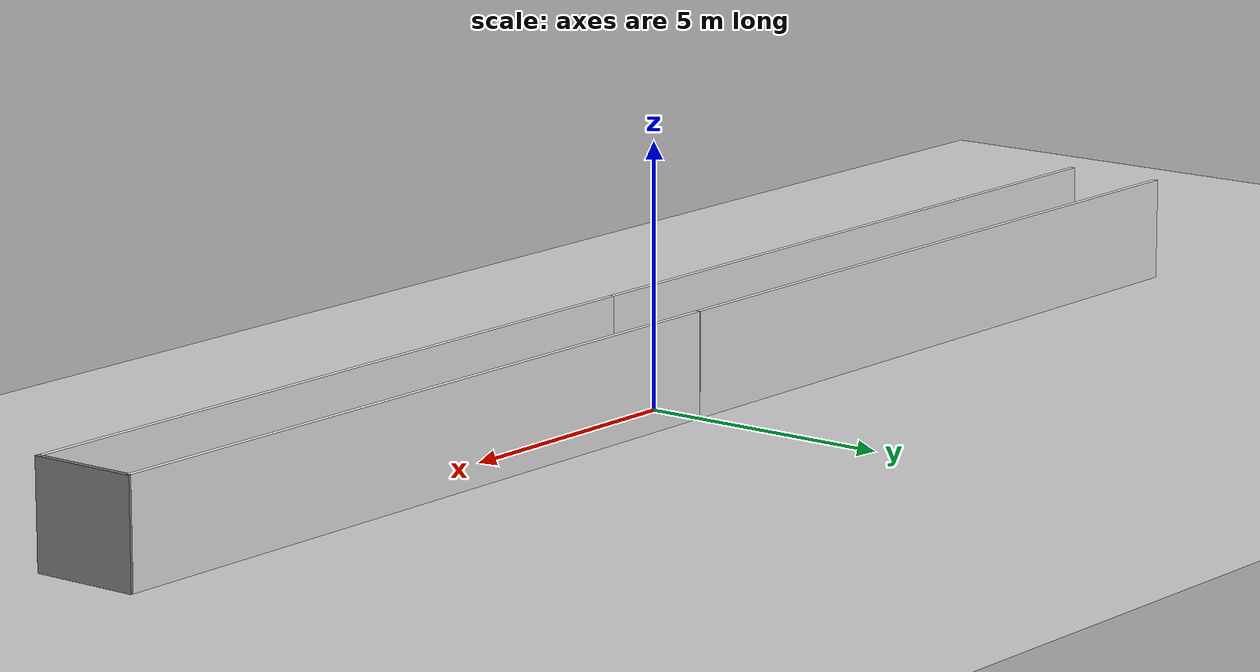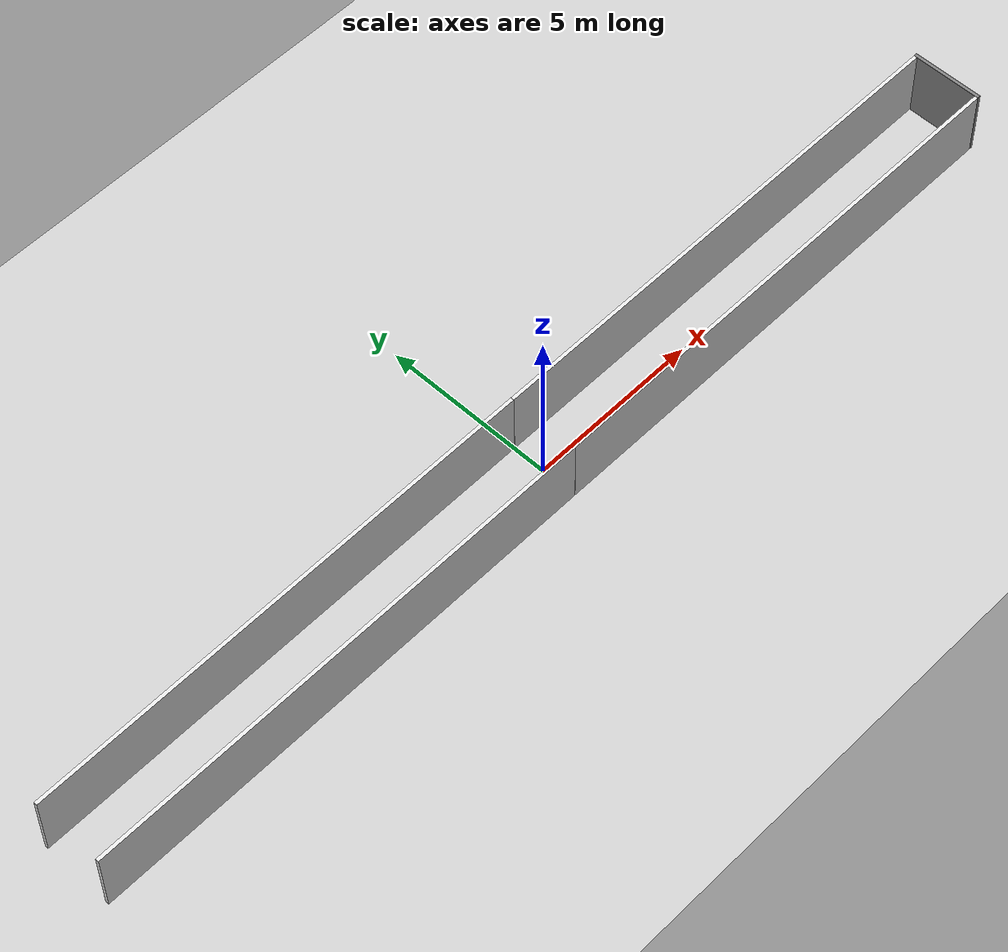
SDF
<sdf version="1.7">
 <world name="hallway">
  <light name="sun" type="directional">
   <pose>0 0 10 0 -0 0</pose>
   <diffuse>0.8 0.8 0.8 1</diffuse>
   <specular>0.2 0.2 0.2 1</specular>
   <direction>-0.5 0.1 -0.9</direction>
   <attenuation><range>10</range></attenuation>
   <spot><inner_angle>0</inner_angle><outer_angle>0</outer_angle><falloff>0</falloff></spot>
  </light>
  <model name="ground_plane">
   <static>1</static>
   <link name="link">
    <collision name="collision">
     <geometry><plane><normal>0 0 1</normal><size>100 100</size></plane></geometry>
    </collision>
    <visual name="visual">
     <geometry><plane><normal>0 0 1</normal><size>100 100</size></plane></geometry>
     <material><ambient>0.8 0.8 0.8 1</ambient><diffuse>0.8 0.8 0.8 1</diffuse></material>
    </visual>
   </link>
  </model>
  <model name="wall_left">
   <static>1</static>
   <pose>7.5 1 1 0 -0 0</pose>
   <link name="link">
    <collision name="collision"><geometry><box><size>15 0.1 2</size></box></geometry></collision>
    <visual name="visual">
     <geometry><box><size>15 0.1 2</size></box></geometry>
     <material><ambient>0.9 0.9 0.9 1</ambient><diffuse>0.9 0.9 0.9 1</diffuse></material>
    </visual>
   </link>
  </model>
  <model name="wall_right">
   <static>1</static>
   <pose>7.5 -1 1 0 -0 0</pose>
   <link name="link">
    <collision name="collision"><geometry><box><size>15 0.1 2</size></box></geometry></collision>
    <visual name="visual">
     <geometry><box><size>15 0.1 2</size></box></geometry>
     <material><ambient>0.9 0.9 0.9 1</ambient><diffuse>0.9 0.9 0.9 1</diffuse></material>
    </visual>
   </link>
  </model>
  <model name="wall_end">
   <static>1</static>
   <pose>15 0 1 0 -0 0</pose>
   <link name="link">
    <collision name="collision"><geometry><box><size>0.1 2.1 2</size></box></geometry></collision>
    <visual name="visual">
     <geometry><box><size>0.1 2.1 2</size></box></geometry>
     <material><ambient>0.5 0.5 0.5 1</ambient><diffuse>0.5 0.5 0.5 1</diffuse></material>
    </visual>
   </link>
  </model>
  <gravity>0 0 -9.8</gravity>
  <magnetic_field>6e-06 2.3e-05 -4.2e-05</magnetic_field>
  <atmosphere type="adiabatic"/>
  <physics type="ode">
   <max_step_size>0.001</max_step_size>
   <real_time_factor>1</real_time_factor>
   <real_time_update_rate>1000</real_time_update_rate>
  </physics>
  <scene><ambient>0.4 0.4 0.4 1</ambient><background>0.7 0.7 0.7 1</background><shadows>1</shadows></scene>
  <audio><device>default</device></audio>
  <spherical_coordinates>
   <surface_model>EARTH_WGS84</surface_model>
   <latitude_deg>0</latitude_deg>
   <longitude_deg>0</longitude_deg>
   <elevation>0</elevation>
   <heading_deg>0</heading_deg>
  </spherical_coordinates>
  <model name="wall_right_clone">
   <static>1</static>
   <pose>-7.5072 -1.00168 1 0 -0 0</pose>
   <link name="link">
    <collision name="collision"><geometry><box><size>15 0.1 2</size></box></geometry></collision>
    <visual name="visual">
     <geometry><box><size>15 0.1 2</size></box></geometry>
     <material><ambient>0.9 0.9 0.9 1</ambient><diffuse>0.9 0.9 0.9 1</diffuse></material>
    </visual>
   </link>
  </model>
  <model name="wall_right_clone_0">
   <static>1</static>
   <pose>-7.50738 1.00273 1 0 -0 0</pose>
   <link name="link">
    <collision name="collision"><geometry><box><size>15 0.1 2</size></box></geometry></collision>
    <visual name="visual">
     <geometry><box><size>15 0.1 2</size></box></geometry>
     <material><ambient>0.9 0.9 0.9 1</ambient><diffuse>0.9 0.9 0.9 1</diffuse></material>
    </visual>
   </link>
  </model>
 </world>
</sdf>
